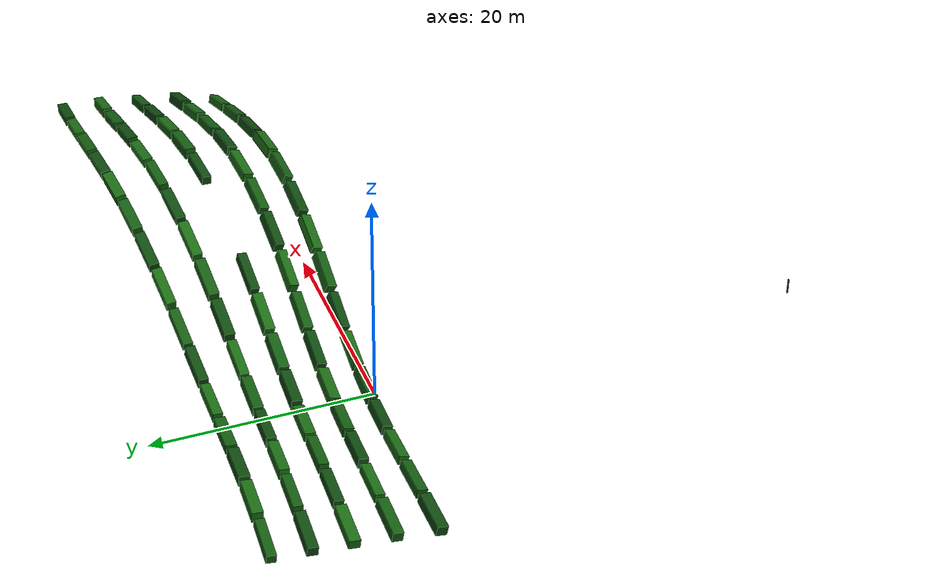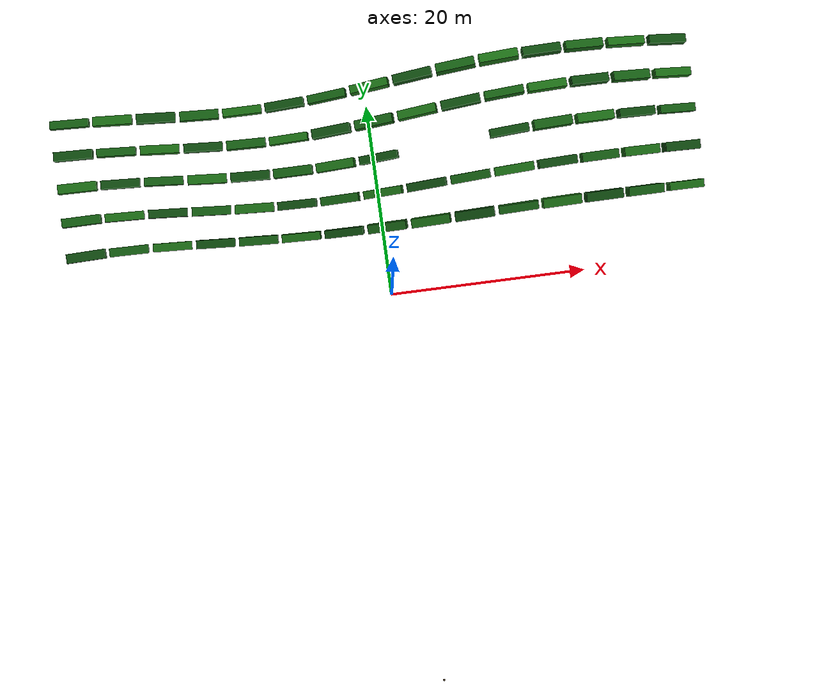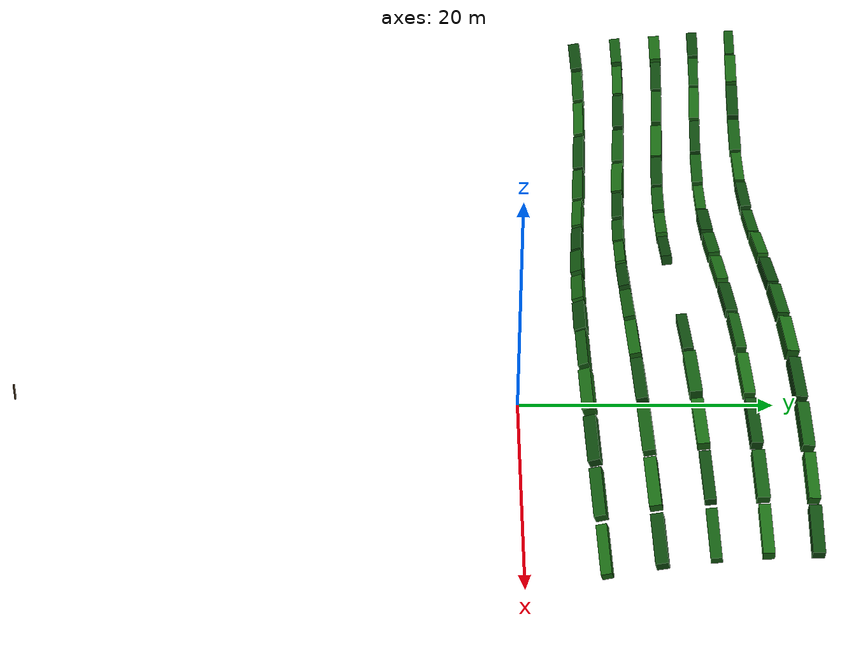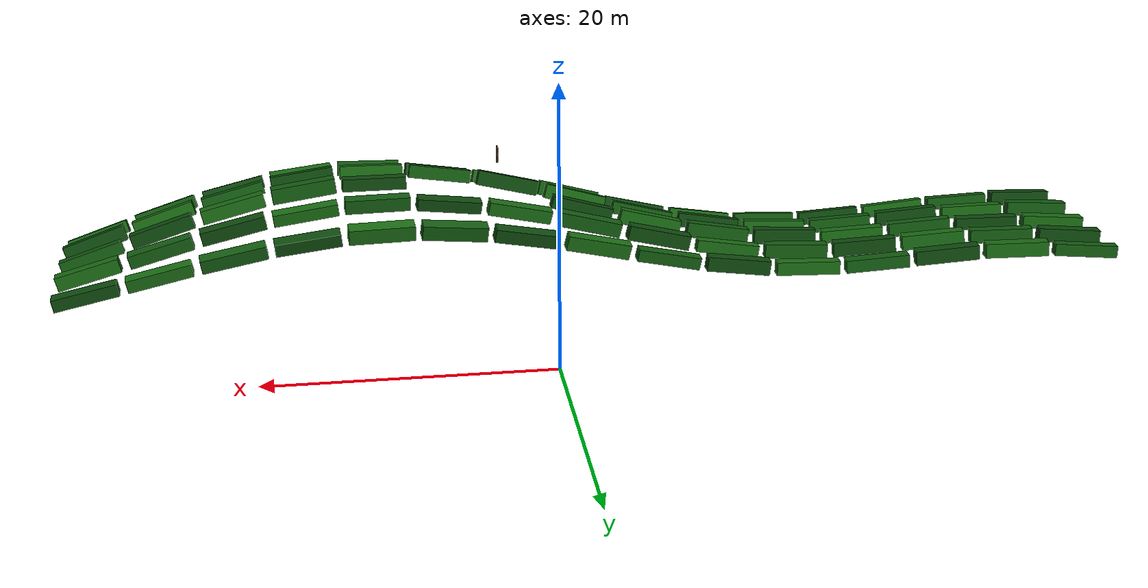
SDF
<sdf version="1.6">
 <world name="mountain_tea_garden_80m">
  <model name="tea_row_09">
   <static>true</static>
   <link name="bush_00">
    <pose>-29 5.35225 12.7639 0.180053 -0.0415722 0.0138171</pose>
    <collision name="collision">
     <geometry><box><size>3.75 0.899342 0.82815</size></box></geometry>
     <laser_retro>55</laser_retro>
     <surface><friction><ode><mu>1.15</mu><mu2>1.15</mu2></ode></friction></surface>
    </collision>
    <visual name="visual">
     <geometry><box><size>3.75 0.899342 0.82815</size></box></geometry>
     <material>
      <ambient>0.055 0.29 0.055 1</ambient>
      <diffuse>0.055 0.29 0.055 1</diffuse>
      <specular>0.05 0.05 0.05 1</specular>
     </material>
    </visual>
   </link>
   <link name="bush_01">
    <pose>-24.85 5.36312 12.7288 0.20988 0.037722 -0.00863311</pose>
    <collision name="collision">
     <geometry><box><size>3.75 0.828005 0.735331</size></box></geometry>
     <laser_retro>55</laser_retro>
     <surface><friction><ode><mu>1.15</mu><mu2>1.15</mu2></ode></friction></surface>
    </collision>
    <visual name="visual">
     <geometry><box><size>3.75 0.828005 0.735331</size></box></geometry>
     <material>
      <ambient>0.075 0.36 0.065 1</ambient>
      <diffuse>0.075 0.36 0.065 1</diffuse>
      <specular>0.05 0.05 0.05 1</specular>
     </material>
    </visual>
   </link>
   <link name="bush_02">
    <pose>-20.7 5.28213 12.4472 0.228962 0.0930998 -0.0299635</pose>
    <collision name="collision">
     <geometry><box><size>3.75 0.782693 0.755233</size></box></geometry>
     <laser_retro>55</laser_retro>
     <surface><friction><ode><mu>1.15</mu><mu2>1.15</mu2></ode></friction></surface>
    </collision>
    <visual name="visual">
     <geometry><box><size>3.75 0.782693 0.755233</size></box></geometry>
     <material>
      <ambient>0.1 0.42 0.075 1</ambient>
      <diffuse>0.1 0.42 0.075 1</diffuse>
      <specular>0.05 0.05 0.05 1</specular>
     </material>
    </visual>
   </link>
   <link name="bush_03">
    <pose>-16.55 5.11972 12.0822 0.244259 0.0742538 -0.047415</pose>
    <collision name="collision">
     <geometry><box><size>3.75 0.814932 0.780849</size></box></geometry>
     <laser_retro>55</laser_retro>
     <surface><friction><ode><mu>1.15</mu><mu2>1.15</mu2></ode></friction></surface>
    </collision>
    <visual name="visual">
     <geometry><box><size>3.75 0.814932 0.780849</size></box></geometry>
     <material>
      <ambient>0.055 0.29 0.055 1</ambient>
      <diffuse>0.055 0.29 0.055 1</diffuse>
      <specular>0.05 0.05 0.05 1</specular>
     </material>
    </visual>
   </link>
   <link name="bush_04">
    <pose>-12.4 4.89679 11.9659 0.265503 -0.0174223 -0.0587484</pose>
    <collision name="collision">
     <geometry><box><size>3.75 0.812604 0.822416</size></box></geometry>
     <laser_retro>55</laser_retro>
     <surface><friction><ode><mu>1.15</mu><mu2>1.15</mu2></ode></friction></surface>
    </collision>
    <visual name="visual">
     <geometry><box><size>3.75 0.812604 0.822416</size></box></geometry>
     <material>
      <ambient>0.075 0.36 0.065 1</ambient>
      <diffuse>0.075 0.36 0.065 1</diffuse>
      <specular>0.05 0.05 0.05 1</specular>
     </material>
    </visual>
   </link>
   <link name="bush_05">
    <pose>-8.25 4.64207 12.2722 0.294253 -0.134065 -0.0625233</pose>
    <collision name="collision">
     <geometry><box><size>3.75 0.760839 0.799647</size></box></geometry>
     <laser_retro>55</laser_retro>
     <surface><friction><ode><mu>1.15</mu><mu2>1.15</mu2></ode></friction></surface>
    </collision>
    <visual name="visual">
     <geometry><box><size>3.75 0.760839 0.799647</size></box></geometry>
     <material>
      <ambient>0.1 0.42 0.075 1</ambient>
      <diffuse>0.1 0.42 0.075 1</diffuse>
      <specular>0.05 0.05 0.05 1</specular>
     </material>
    </visual>
   </link>
   <link name="bush_06">
    <pose>-4.1 4.38837 13.0352 0.324111 -0.222505 -0.058263</pose>
    <collision name="collision">
     <geometry><box><size>3.75 0.76388 0.79251</size></box></geometry>
     <laser_retro>55</laser_retro>
     <surface><friction><ode><mu>1.15</mu><mu2>1.15</mu2></ode></friction></surface>
    </collision>
    <visual name="visual">
     <geometry><box><size>3.75 0.76388 0.79251</size></box></geometry>
     <material>
      <ambient>0.055 0.29 0.055 1</ambient>
      <diffuse>0.055 0.29 0.055 1</diffuse>
      <specular>0.05 0.05 0.05 1</specular>
     </material>
    </visual>
   </link>
   <link name="bush_07">
    <pose>0.05 4.16838 14.1157 0.347809 -0.25602 -0.0465056</pose>
    <collision name="collision">
     <geometry><box><size>3.75 0.83859 0.881807</size></box></geometry>
     <laser_retro>55</laser_retro>
     <surface><friction><ode><mu>1.15</mu><mu2>1.15</mu2></ode></friction></surface>
    </collision>
    <visual name="visual">
     <geometry><box><size>3.75 0.83859 0.881807</size></box></geometry>
     <material>
      <ambient>0.075 0.36 0.065 1</ambient>
      <diffuse>0.075 0.36 0.065 1</diffuse>
      <specular>0.05 0.05 0.05 1</specular>
     </material>
    </visual>
   </link>
   <link name="bush_08">
    <pose>4.2 4.01043 15.0959 0.361532 -0.229834 -0.0287463</pose>
    <collision name="collision">
     <geometry><box><size>3.75 0.86535 0.740402</size></box></geometry>
     <laser_retro>55</laser_retro>
     <surface><friction><ode><mu>1.15</mu><mu2>1.15</mu2></ode></friction></surface>
    </collision>
    <visual name="visual">
     <geometry><box><size>3.75 0.86535 0.740402</size></box></geometry>
     <material>
      <ambient>0.1 0.42 0.075 1</ambient>
      <diffuse>0.1 0.42 0.075 1</diffuse>
      <specular>0.05 0.05 0.05 1</specular>
     </material>
    </visual>
   </link>
   <link name="bush_09">
    <pose>8.35 3.93486 15.9007 0.364867 -0.148978 -0.00726499</pose>
    <collision name="collision">
     <geometry><box><size>3.75 0.898973 0.722037</size></box></geometry>
     <laser_retro>55</laser_retro>
     <surface><friction><ode><mu>1.15</mu><mu2>1.15</mu2></ode></friction></surface>
    </collision>
    <visual name="visual">
     <geometry><box><size>3.75 0.898973 0.722037</size></box></geometry>
     <material>
      <ambient>0.055 0.29 0.055 1</ambient>
      <diffuse>0.055 0.29 0.055 1</diffuse>
      <specular>0.05 0.05 0.05 1</specular>
     </material>
    </visual>
   </link>
   <link name="bush_10">
    <pose>12.5 3.95143 16.3571 0.359266 -0.0280177 0.0151587</pose>
    <collision name="collision">
     <geometry><box><size>3.75 0.769859 0.877444</size></box></geometry>
     <laser_retro>55</laser_retro>
     <surface><friction><ode><mu>1.15</mu><mu2>1.15</mu2></ode></friction></surface>
    </collision>
    <visual name="visual">
     <geometry><box><size>3.75 0.769859 0.877444</size></box></geometry>
     <material>
      <ambient>0.075 0.36 0.065 1</ambient>
      <diffuse>0.075 0.36 0.065 1</diffuse>
      <specular>0.05 0.05 0.05 1</specular>
     </material>
    </visual>
   </link>
   <link name="bush_11">
    <pose>16.65 4.05798 16.1934 0.34668 0.105656 0.0356169</pose>
    <collision name="collision">
     <geometry><box><size>3.75 0.874112 0.875767</size></box></geometry>
     <laser_retro>55</laser_retro>
     <surface><friction><ode><mu>1.15</mu><mu2>1.15</mu2></ode></friction></surface>
    </collision>
    <visual name="visual">
     <geometry><box><size>3.75 0.874112 0.875767</size></box></geometry>
     <material>
      <ambient>0.1 0.42 0.075 1</ambient>
      <diffuse>0.1 0.42 0.075 1</diffuse>
      <specular>0.05 0.05 0.05 1</specular>
     </material>
    </visual>
   </link>
   <link name="bush_12">
    <pose>20.8 4.24079 15.4515 0.32883 0.219406 0.0514685</pose>
    <collision name="collision">
     <geometry><box><size>3.75 0.877348 0.780358</size></box></geometry>
     <laser_retro>55</laser_retro>
     <surface><friction><ode><mu>1.15</mu><mu2>1.15</mu2></ode></friction></surface>
    </collision>
    <visual name="visual">
     <geometry><box><size>3.75 0.877348 0.780358</size></box></geometry>
     <material>
      <ambient>0.055 0.29 0.055 1</ambient>
      <diffuse>0.055 0.29 0.055 1</diffuse>
      <specular>0.05 0.05 0.05 1</specular>
     </material>
    </visual>
   </link>
   <link name="bush_13">
    <pose>24.95 4.47632 14.3535 0.307339 0.290302 0.0606853</pose>
    <collision name="collision">
     <geometry><box><size>3.75 0.859435 0.787765</size></box></geometry>
     <laser_retro>55</laser_retro>
     <surface><friction><ode><mu>1.15</mu><mu2>1.15</mu2></ode></friction></surface>
    </collision>
    <visual name="visual">
     <geometry><box><size>3.75 0.859435 0.787765</size></box></geometry>
     <material>
      <ambient>0.075 0.36 0.065 1</ambient>
      <diffuse>0.075 0.36 0.065 1</diffuse>
      <specular>0.05 0.05 0.05 1</specular>
     </material>
    </visual>
   </link>
   <link name="bush_14">
    <pose>29.1 4.73423 13.0215 0.284367 0.310866 0.0620989</pose>
    <collision name="collision">
     <geometry><box><size>3.75 0.760999 0.739546</size></box></geometry>
     <laser_retro>55</laser_retro>
     <surface><friction><ode><mu>1.15</mu><mu2>1.15</mu2></ode></friction></surface>
    </collision>
    <visual name="visual">
     <geometry><box><size>3.75 0.760999 0.739546</size></box></geometry>
     <material>
      <ambient>0.1 0.42 0.075 1</ambient>
      <diffuse>0.1 0.42 0.075 1</diffuse>
      <specular>0.05 0.05 0.05 1</specular>
     </material>
    </visual>
   </link>
  </model>
  <model name="tea_row_10">
   <static>true</static>
   <link name="bush_00">
    <pose>-29 8.70456 13.2982 0.134036 -0.0614936 -0.0128954</pose>
    <collision name="collision">
     <geometry><box><size>3.75 0.85013 0.842702</size></box></geometry>
     <laser_retro>55</laser_retro>
     <surface><friction><ode><mu>1.15</mu><mu2>1.15</mu2></ode></friction></surface>
    </collision>
    <visual name="visual">
     <geometry><box><size>3.75 0.85013 0.842702</size></box></geometry>
     <material>
      <ambient>0.075 0.36 0.065 1</ambient>
      <diffuse>0.075 0.36 0.065 1</diffuse>
      <specular>0.05 0.05 0.05 1</specular>
     </material>
    </visual>
   </link>
   <link name="bush_01">
    <pose>-24.85 8.60682 13.3215 0.155666 0.0234297 -0.0336851</pose>
    <collision name="collision">
     <geometry><box><size>3.75 0.779008 0.722194</size></box></geometry>
     <laser_retro>55</laser_retro>
     <surface><friction><ode><mu>1.15</mu><mu2>1.15</mu2></ode></friction></surface>
    </collision>
    <visual name="visual">
     <geometry><box><size>3.75 0.779008 0.722194</size></box></geometry>
     <material>
      <ambient>0.1 0.42 0.075 1</ambient>
      <diffuse>0.1 0.42 0.075 1</diffuse>
      <specular>0.05 0.05 0.05 1</specular>
     </material>
    </visual>
   </link>
   <link name="bush_02">
    <pose>-20.7 8.4309 13.1346 0.169636 0.0845534 -0.0501166</pose>
    <collision name="collision">
     <geometry><box><size>3.75 0.798825 0.83885</size></box></geometry>
     <laser_retro>55</laser_retro>
     <surface><friction><ode><mu>1.15</mu><mu2>1.15</mu2></ode></friction></surface>
    </collision>
    <visual name="visual">
     <geometry><box><size>3.75 0.798825 0.83885</size></box></geometry>
     <material>
      <ambient>0.055 0.29 0.055 1</ambient>
      <diffuse>0.055 0.29 0.055 1</diffuse>
      <specular>0.05 0.05 0.05 1</specular>
     </material>
    </visual>
   </link>
   <link name="bush_03">
    <pose>-16.55 8.19948 12.7614 0.182092 0.0666799 -0.0600855</pose>
    <collision name="collision">
     <geometry><box><size>3.75 0.833669 0.785185</size></box></geometry>
     <laser_retro>55</laser_retro>
     <surface><friction><ode><mu>1.15</mu><mu2>1.15</mu2></ode></friction></surface>
    </collision>
    <visual name="visual">
     <geometry><box><size>3.75 0.833669 0.785185</size></box></geometry>
     <material>
      <ambient>0.075 0.36 0.065 1</ambient>
      <diffuse>0.075 0.36 0.065 1</diffuse>
      <specular>0.05 0.05 0.05 1</specular>
     </material>
    </visual>
   </link>
   <link name="bush_04">
    <pose>-12.4 7.94236 12.6657 0.199169 -0.0289981 -0.0623269</pose>
    <collision name="collision">
     <geometry><box><size>3.75 0.866529 0.790984</size></box></geometry>
     <laser_retro>55</laser_retro>
     <surface><friction><ode><mu>1.15</mu><mu2>1.15</mu2></ode></friction></surface>
    </collision>
    <visual name="visual">
     <geometry><box><size>3.75 0.866529 0.790984</size></box></geometry>
     <material>
      <ambient>0.1 0.42 0.075 1</ambient>
      <diffuse>0.1 0.42 0.075 1</diffuse>
      <specular>0.05 0.05 0.05 1</specular>
     </material>
    </visual>
   </link>
   <link name="bush_05">
    <pose>-8.25 7.69266 13.0673 0.219361 -0.151053 -0.0565578</pose>
    <collision name="collision">
     <geometry><box><size>3.75 0.803164 0.838492</size></box></geometry>
     <laser_retro>55</laser_retro>
     <surface><friction><ode><mu>1.15</mu><mu2>1.15</mu2></ode></friction></surface>
    </collision>
    <visual name="visual">
     <geometry><box><size>3.75 0.803164 0.838492</size></box></geometry>
     <material>
      <ambient>0.055 0.29 0.055 1</ambient>
      <diffuse>0.055 0.29 0.055 1</diffuse>
      <specular>0.05 0.05 0.05 1</specular>
     </material>
    </visual>
   </link>
   <link name="bush_06">
    <pose>-4.1 7.48256 13.8674 0.236342 -0.242617 -0.0435077</pose>
    <collision name="collision">
     <geometry><box><size>3.75 0.830412 0.743927</size></box></geometry>
     <laser_retro>55</laser_retro>
     <surface><friction><ode><mu>1.15</mu><mu2>1.15</mu2></ode></friction></surface>
    </collision>
    <visual name="visual">
     <geometry><box><size>3.75 0.830412 0.743927</size></box></geometry>
     <material>
      <ambient>0.075 0.36 0.065 1</ambient>
      <diffuse>0.075 0.36 0.065 1</diffuse>
      <specular>0.05 0.05 0.05 1</specular>
     </material>
    </visual>
   </link>
   <link name="bush_07">
    <pose>0.05 7.33911 15.0456 0.245396 -0.275628 -0.0248388</pose>
    <collision name="collision">
     <geometry><box><size>3.75 0.764759 0.851298</size></box></geometry>
     <laser_retro>55</laser_retro>
     <surface><friction><ode><mu>1.15</mu><mu2>1.15</mu2></ode></friction></surface>
    </collision>
    <visual name="visual">
     <geometry><box><size>3.75 0.764759 0.851298</size></box></geometry>
     <material>
      <ambient>0.1 0.42 0.075 1</ambient>
      <diffuse>0.1 0.42 0.075 1</diffuse>
      <specular>0.05 0.05 0.05 1</specular>
     </material>
    </visual>
   </link>
   <link name="bush_08">
    <pose>4.2 7.2808 16.185 0.246102 -0.245144 -0.00295225</pose>
    <collision name="collision">
     <geometry><box><size>3.75 0.810115 0.871802</size></box></geometry>
     <laser_retro>55</laser_retro>
     <surface><friction><ode><mu>1.15</mu><mu2>1.15</mu2></ode></friction></surface>
    </collision>
    <visual name="visual">
     <geometry><box><size>3.75 0.810115 0.871802</size></box></geometry>
     <material>
      <ambient>0.055 0.29 0.055 1</ambient>
      <diffuse>0.055 0.29 0.055 1</diffuse>
      <specular>0.05 0.05 0.05 1</specular>
     </material>
    </visual>
   </link>
   <link name="bush_09">
    <pose>8.35 7.31514 16.9955 0.241336 -0.15639 0.0193173</pose>
    <collision name="collision">
     <geometry><box><size>3.75 0.823586 0.764395</size></box></geometry>
     <laser_retro>55</laser_retro>
     <surface><friction><ode><mu>1.15</mu><mu2>1.15</mu2></ode></friction></surface>
    </collision>
    <visual name="visual">
     <geometry><box><size>3.75 0.823586 0.764395</size></box></geometry>
     <material>
      <ambient>0.075 0.36 0.065 1</ambient>
      <diffuse>0.075 0.36 0.065 1</diffuse>
      <specular>0.05 0.05 0.05 1</specular>
     </material>
    </visual>
   </link>
   <link name="bush_10">
    <pose>12.5 7.4377 17.3918 0.234977 -0.0256073 0.039083</pose>
    <collision name="collision">
     <geometry><box><size>3.75 0.828496 0.777836</size></box></geometry>
     <laser_retro>55</laser_retro>
     <surface><friction><ode><mu>1.15</mu><mu2>1.15</mu2></ode></friction></surface>
    </collision>
    <visual name="visual">
     <geometry><box><size>3.75 0.828496 0.777836</size></box></geometry>
     <material>
      <ambient>0.1 0.42 0.075 1</ambient>
      <diffuse>0.1 0.42 0.075 1</diffuse>
      <specular>0.05 0.05 0.05 1</specular>
     </material>
    </visual>
   </link>
   <link name="bush_11">
    <pose>16.65 7.63269 17.2178 0.229837 0.116143 0.0537969</pose>
    <collision name="collision">
     <geometry><box><size>3.75 0.840752 0.812497</size></box></geometry>
     <laser_retro>55</laser_retro>
     <surface><friction><ode><mu>1.15</mu><mu2>1.15</mu2></ode></friction></surface>
    </collision>
    <visual name="visual">
     <geometry><box><size>3.75 0.840752 0.812497</size></box></geometry>
     <material>
      <ambient>0.055 0.29 0.055 1</ambient>
      <diffuse>0.055 0.29 0.055 1</diffuse>
      <specular>0.05 0.05 0.05 1</specular>
     </material>
    </visual>
   </link>
   <link name="bush_12">
    <pose>20.8 7.875 16.426 0.226868 0.233216 0.06158</pose>
    <collision name="collision">
     <geometry><box><size>3.75 0.865535 0.726184</size></box></geometry>
     <laser_retro>55</laser_retro>
     <surface><friction><ode><mu>1.15</mu><mu2>1.15</mu2></ode></friction></surface>
    </collision>
    <visual name="visual">
     <geometry><box><size>3.75 0.865535 0.726184</size></box></geometry>
     <material>
      <ambient>0.075 0.36 0.065 1</ambient>
      <diffuse>0.075 0.36 0.065 1</diffuse>
      <specular>0.05 0.05 0.05 1</specular>
     </material>
    </visual>
   </link>
   <link name="bush_13">
    <pose>24.95 8.13342 15.3105 0.225916 0.302858 0.061447</pose>
    <collision name="collision">
     <geometry><box><size>3.75 0.86402 0.819587</size></box></geometry>
     <laser_retro>55</laser_retro>
     <surface><friction><ode><mu>1.15</mu><mu2>1.15</mu2></ode></friction></surface>
    </collision>
    <visual name="visual">
     <geometry><box><size>3.75 0.86402 0.819587</size></box></geometry>
     <material>
      <ambient>0.1 0.42 0.075 1</ambient>
      <diffuse>0.1 0.42 0.075 1</diffuse>
      <specular>0.05 0.05 0.05 1</specular>
     </material>
    </visual>
   </link>
   <link name="bush_14">
    <pose>29.1 8.37465 13.9927 0.226959 0.319792 0.0534144</pose>
    <collision name="collision">
     <geometry><box><size>3.75 0.873963 0.898614</size></box></geometry>
     <laser_retro>55</laser_retro>
     <surface><friction><ode><mu>1.15</mu><mu2>1.15</mu2></ode></friction></surface>
    </collision>
    <visual name="visual">
     <geometry><box><size>3.75 0.873963 0.898614</size></box></geometry>
     <material>
      <ambient>0.055 0.29 0.055 1</ambient>
      <diffuse>0.055 0.29 0.055 1</diffuse>
      <specular>0.05 0.05 0.05 1</specular>
     </material>
    </visual>
   </link>
  </model>
  <model name="tea_row_11">
   <static>true</static>
   <link name="bush_00">
    <pose>-29 11.9286 13.633 0.106095 -0.0735593 -0.037245</pose>
    <collision name="collision">
     <geometry><box><size>3.75 0.890386 0.756178</size></box></geometry>
     <laser_retro>55</laser_retro>
     <surface><friction><ode><mu>1.15</mu><mu2>1.15</mu2></ode></friction></surface>
    </collision>
    <visual name="visual">
     <geometry><box><size>3.75 0.890386 0.756178</size></box></geometry>
     <material>
      <ambient>0.1 0.42 0.075 1</ambient>
      <diffuse>0.1 0.42 0.075 1</diffuse>
      <specular>0.05 0.05 0.05 1</specular>
     </material>
    </visual>
   </link>
   <link name="bush_01">
    <pose>-24.85 11.74 13.7443 0.115619 0.0133356 -0.0525785</pose>
    <collision name="collision">
     <geometry><box><size>3.75 0.815225 0.716898</size></box></geometry>
     <laser_retro>55</laser_retro>
     <surface><friction><ode><mu>1.15</mu><mu2>1.15</mu2></ode></friction></surface>
    </collision>
    <visual name="visual">
     <geometry><box><size>3.75 0.815225 0.716898</size></box></geometry>
     <material>
      <ambient>0.055 0.29 0.055 1</ambient>
      <diffuse>0.055 0.29 0.055 1</diffuse>
      <specular>0.05 0.05 0.05 1</specular>
     </material>
    </visual>
   </link>
   <link name="bush_02">
    <pose>-20.7 11.5012 13.5845 0.12162 0.0778765 -0.0611361</pose>
    <collision name="collision">
     <geometry><box><size>3.75 0.786515 0.818592</size></box></geometry>
     <laser_retro>55</laser_retro>
     <surface><friction><ode><mu>1.15</mu><mu2>1.15</mu2></ode></friction></surface>
    </collision>
    <visual name="visual">
     <geometry><box><size>3.75 0.786515 0.818592</size></box></geometry>
     <material>
      <ambient>0.075 0.36 0.065 1</ambient>
      <diffuse>0.075 0.36 0.065 1</diffuse>
      <specular>0.05 0.05 0.05 1</specular>
     </material>
    </visual>
   </link>
   <link name="bush_03">
    <pose>-16.55 11.2429 13.2246 0.128172 0.0613406 -0.0618335</pose>
    <collision name="collision">
     <geometry><box><size>3.75 0.875386 0.743825</size></box></geometry>
     <laser_retro>55</laser_retro>
     <surface><friction><ode><mu>1.15</mu><mu2>1.15</mu2></ode></friction></surface>
    </collision>
    <visual name="visual">
     <geometry><box><size>3.75 0.875386 0.743825</size></box></geometry>
     <material>
      <ambient>0.1 0.42 0.075 1</ambient>
      <diffuse>0.1 0.42 0.075 1</diffuse>
      <specular>0.05 0.05 0.05 1</specular>
     </material>
    </visual>
   </link>
   <link name="bush_04">
    <pose>-12.4 10.9984 13.2273 0.136367 -0.0357339 -0.0545826</pose>
    <collision name="collision">
     <geometry><box><size>3.75 0.858988 0.897455</size></box></geometry>
     <laser_retro>55</laser_retro>
     <surface><friction><ode><mu>1.15</mu><mu2>1.15</mu2></ode></friction></surface>
    </collision>
    <visual name="visual">
     <geometry><box><size>3.75 0.858988 0.897455</size></box></geometry>
     <material>
      <ambient>0.055 0.29 0.055 1</ambient>
      <diffuse>0.055 0.29 0.055 1</diffuse>
      <specular>0.05 0.05 0.05 1</specular>
     </material>
    </visual>
   </link>
   <link name="bush_05">
    <pose>-8.25 10.7992 13.6307 0.141424 -0.159592 -0.0403013</pose>
    <collision name="collision">
     <geometry><box><size>3.75 0.881094 0.884052</size></box></geometry>
     <laser_retro>55</laser_retro>
     <surface><friction><ode><mu>1.15</mu><mu2>1.15</mu2></ode></friction></surface>
    </collision>
    <visual name="visual">
     <geometry><box><size>3.75 0.881094 0.884052</size></box></geometry>
     <material>
      <ambient>0.075 0.36 0.065 1</ambient>
      <diffuse>0.075 0.36 0.065 1</diffuse>
      <specular>0.05 0.05 0.05 1</specular>
     </material>
    </visual>
   </link>
   <link name="bush_06">
    <pose>-4.1 10.671 14.5035 0.137952 -0.250736 -0.0208119</pose>
    <collision name="collision">
     <geometry><box><size>3.75 0.854156 0.861827</size></box></geometry>
     <laser_retro>55</laser_retro>
     <surface><friction><ode><mu>1.15</mu><mu2>1.15</mu2></ode></friction></surface>
    </collision>
    <visual name="visual">
     <geometry><box><size>3.75 0.854156 0.861827</size></box></geometry>
     <material>
      <ambient>0.1 0.42 0.075 1</ambient>
      <diffuse>0.1 0.42 0.075 1</diffuse>
      <specular>0.05 0.05 0.05 1</specular>
     </material>
    </visual>
   </link>
   <link name="bush_07">
    <pose>0.05 10.6302 15.5949 0.125002 -0.280494 0.0013747</pose>
    <collision name="collision">
     <geometry><box><size>3.75 0.764919 0.737097</size></box></geometry>
     <laser_retro>55</laser_retro>
     <surface><friction><ode><mu>1.15</mu><mu2>1.15</mu2></ode></friction></surface>
    </collision>
    <visual name="visual">
     <geometry><box><size>3.75 0.764919 0.737097</size></box></geometry>
     <material>
      <ambient>0.055 0.29 0.055 1</ambient>
      <diffuse>0.055 0.29 0.055 1</diffuse>
      <specular>0.05 0.05 0.05 1</specular>
     </material>
    </visual>
   </link>
   <link name="bush_10">
    <pose>12.5 11.0263 17.9491 0.0801965 -0.0181711 0.0558683</pose>
    <collision name="collision">
     <geometry><box><size>3.75 0.766316 0.73849</size></box></geometry>
     <laser_retro>55</laser_retro>
     <surface><friction><ode><mu>1.15</mu><mu2>1.15</mu2></ode></friction></surface>
    </collision>
    <visual name="visual">
     <geometry><box><size>3.75 0.766316 0.73849</size></box></geometry>
     <material>
      <ambient>0.055 0.29 0.055 1</ambient>
      <diffuse>0.055 0.29 0.055 1</diffuse>
      <specular>0.05 0.05 0.05 1</specular>
     </material>
    </visual>
   </link>
   <link name="bush_11">
    <pose>16.65 11.2743 17.8108 0.0817523 0.120856 0.0621813</pose>
    <collision name="collision">
     <geometry><box><size>3.75 0.896393 0.898653</size></box></geometry>
     <laser_retro>55</laser_retro>
     <surface><friction><ode><mu>1.15</mu><mu2>1.15</mu2></ode></friction></surface>
    </collision>
    <visual name="visual">
     <geometry><box><size>3.75 0.896393 0.898653</size></box></geometry>
     <material>
      <ambient>0.075 0.36 0.065 1</ambient>
      <diffuse>0.075 0.36 0.065 1</diffuse>
      <specular>0.05 0.05 0.05 1</specular>
     </material>
    </visual>
   </link>
   <link name="bush_12">
    <pose>20.8 11.532 17.0093 0.0942469 0.231491 0.0605021</pose>
    <collision name="collision">
     <geometry><box><size>3.75 0.85651 0.807696</size></box></geometry>
     <laser_retro>55</laser_retro>
     <surface><friction><ode><mu>1.15</mu><mu2>1.15</mu2></ode></friction></surface>
    </collision>
    <visual name="visual">
     <geometry><box><size>3.75 0.85651 0.807696</size></box></geometry>
     <material>
      <ambient>0.1 0.42 0.075 1</ambient>
      <diffuse>0.1 0.42 0.075 1</diffuse>
      <specular>0.05 0.05 0.05 1</specular>
     </material>
    </visual>
   </link>
   <link name="bush_13">
    <pose>24.95 11.7662 15.8799 0.115584 0.293994 0.0510429</pose>
    <collision name="collision">
     <geometry><box><size>3.75 0.791247 0.824329</size></box></geometry>
     <laser_retro>55</laser_retro>
     <surface><friction><ode><mu>1.15</mu><mu2>1.15</mu2></ode></friction></surface>
    </collision>
    <visual name="visual">
     <geometry><box><size>3.75 0.791247 0.824329</size></box></geometry>
     <material>
      <ambient>0.055 0.29 0.055 1</ambient>
      <diffuse>0.055 0.29 0.055 1</diffuse>
      <specular>0.05 0.05 0.05 1</specular>
     </material>
    </visual>
   </link>
   <link name="bush_14">
    <pose>29.1 11.9469 14.5308 0.143213 0.305604 0.035003</pose>
    <collision name="collision">
     <geometry><box><size>3.75 0.783841 0.731054</size></box></geometry>
     <laser_retro>55</laser_retro>
     <surface><friction><ode><mu>1.15</mu><mu2>1.15</mu2></ode></friction></surface>
    </collision>
    <visual name="visual">
     <geometry><box><size>3.75 0.783841 0.731054</size></box></geometry>
     <material>
      <ambient>0.075 0.36 0.065 1</ambient>
      <diffuse>0.075 0.36 0.065 1</diffuse>
      <specular>0.05 0.05 0.05 1</specular>
     </material>
    </visual>
   </link>
  </model>
  <model name="tea_row_12">
   <static>true</static>
   <link name="bush_00">
    <pose>-29 15.0473 13.9633 0.097558 -0.0765152 -0.0547891</pose>
    <collision name="collision">
     <geometry><box><size>3.75 0.851427 0.811897</size></box></geometry>
     <laser_retro>55</laser_retro>
     <surface><friction><ode><mu>1.15</mu><mu2>1.15</mu2></ode></friction></surface>
    </collision>
    <visual name="visual">
     <geometry><box><size>3.75 0.851427 0.811897</size></box></geometry>
     <material>
      <ambient>0.055 0.29 0.055 1</ambient>
      <diffuse>0.055 0.29 0.055 1</diffuse>
      <specular>0.05 0.05 0.05 1</specular>
     </material>
    </visual>
   </link>
   <link name="bush_01">
    <pose>-24.85 14.8022 14.102 0.0941593 0.00907806 -0.0618953</pose>
    <collision name="collision">
     <geometry><box><size>3.75 0.769224 0.794685</size></box></geometry>
     <laser_retro>55</laser_retro>
     <surface><friction><ode><mu>1.15</mu><mu2>1.15</mu2></ode></friction></surface>
    </collision>
    <visual name="visual">
     <geometry><box><size>3.75 0.769224 0.794685</size></box></geometry>
     <material>
      <ambient>0.075 0.36 0.065 1</ambient>
      <diffuse>0.075 0.36 0.065 1</diffuse>
      <specular>0.05 0.05 0.05 1</specular>
     </material>
    </visual>
   </link>
   <link name="bush_02">
    <pose>-20.7 14.544 13.9435 0.0916285 0.0750068 -0.0610454</pose>
    <collision name="collision">
     <geometry><box><size>3.75 0.811904 0.868225</size></box></geometry>
     <laser_retro>55</laser_retro>
     <surface><friction><ode><mu>1.15</mu><mu2>1.15</mu2></ode></friction></surface>
    </collision>
    <visual name="visual">
     <geometry><box><size>3.75 0.811904 0.868225</size></box></geometry>
     <material>
      <ambient>0.1 0.42 0.075 1</ambient>
      <diffuse>0.1 0.42 0.075 1</diffuse>
      <specular>0.05 0.05 0.05 1</specular>
     </material>
    </visual>
   </link>
   <link name="bush_03">
    <pose>-16.55 14.3059 13.628 0.0910608 0.0606146 -0.0523468</pose>
    <collision name="collision">
     <geometry><box><size>3.75 0.793523 0.866862</size></box></geometry>
     <laser_retro>55</laser_retro>
     <surface><friction><ode><mu>1.15</mu><mu2>1.15</mu2></ode></friction></surface>
    </collision>
    <visual name="visual">
     <geometry><box><size>3.75 0.793523 0.866862</size></box></geometry>
     <material>
      <ambient>0.055 0.29 0.055 1</ambient>
      <diffuse>0.055 0.29 0.055 1</diffuse>
      <specular>0.05 0.05 0.05 1</specular>
     </material>
    </visual>
   </link>
   <link name="bush_04">
    <pose>-12.4 14.1185 13.5362 0.0881894 -0.0343098 -0.0369017</pose>
    <collision name="collision">
     <geometry><box><size>3.75 0.834559 0.834244</size></box></geometry>
     <laser_retro>55</laser_retro>
     <surface><friction><ode><mu>1.15</mu><mu2>1.15</mu2></ode></friction></surface>
    </collision>
    <visual name="visual">
     <geometry><box><size>3.75 0.834559 0.834244</size></box></geometry>
     <material>
      <ambient>0.075 0.36 0.065 1</ambient>
      <diffuse>0.075 0.36 0.065 1</diffuse>
      <specular>0.05 0.05 0.05 1</specular>
     </material>
    </visual>
   </link>
   <link name="bush_05">
    <pose>-8.25 14.006 13.8746 0.0757532 -0.155138 -0.0166849</pose>
    <collision name="collision">
     <geometry><box><size>3.75 0.765108 0.71522</size></box></geometry>
     <laser_retro>55</laser_retro>
     <surface><friction><ode><mu>1.15</mu><mu2>1.15</mu2></ode></friction></surface>
    </collision>
    <visual name="visual">
     <geometry><box><size>3.75 0.765108 0.71522</size></box></geometry>
     <material>
      <ambient>0.1 0.42 0.075 1</ambient>
      <diffuse>0.1 0.42 0.075 1</diffuse>
      <specular>0.05 0.05 0.05 1</specular>
     </material>
    </visual>
   </link>
   <link name="bush_06">
    <pose>-4.1 13.983 14.8035 0.0503752 -0.241588 0.00569504</pose>
    <collision name="collision">
     <geometry><box><size>3.75 0.886166 0.863871</size></box></geometry>
     <laser_retro>55</laser_retro>
     <surface><friction><ode><mu>1.15</mu><mu2>1.15</mu2></ode></friction></surface>
    </collision>
    <visual name="visual">
     <geometry><box><size>3.75 0.886166 0.863871</size></box></geometry>
     <material>
      <ambient>0.055 0.29 0.055 1</ambient>
      <diffuse>0.055 0.29 0.055 1</diffuse>
      <specular>0.05 0.05 0.05 1</specular>
     </material>
    </visual>
   </link>
   <link name="bush_07">
    <pose>0.05 14.0523 15.8926 0.0154598 -0.265722 0.0273362</pose>
    <collision name="collision">
     <geometry><box><size>3.75 0.884545 0.840853</size></box></geometry>
     <laser_retro>55</laser_retro>
     <surface><friction><ode><mu>1.15</mu><mu2>1.15</mu2></ode></friction></surface>
    </collision>
    <visual name="visual">
     <geometry><box><size>3.75 0.884545 0.840853</size></box></geometry>
     <material>
      <ambient>0.075 0.36 0.065 1</ambient>
      <diffuse>0.075 0.36 0.065 1</diffuse>
      <specular>0.05 0.05 0.05 1</specular>
     </material>
    </visual>
   </link>
   <link name="bush_08">
    <pose>4.2 14.205 16.9236 -0.0207543 -0.225867 0.0454373</pose>
    <collision name="collision">
     <geometry><box><size>3.75 0.840349 0.774441</size></box></geometry>
     <laser_retro>55</laser_retro>
     <surface><friction><ode><mu>1.15</mu><mu2>1.15</mu2></ode></friction></surface>
    </collision>
    <visual name="visual">
     <geometry><box><size>3.75 0.840349 0.774441</size></box></geometry>
     <material>
      <ambient>0.1 0.42 0.075 1</ambient>
      <diffuse>0.1 0.42 0.075 1</diffuse>
      <specular>0.05 0.05 0.05 1</specular>
     </material>
    </visual>
   </link>
   <link name="bush_09">
    <pose>8.35 14.4215 17.6566 -0.0488613 -0.132674 0.0576729</pose>
    <collision name="collision">
     <geometry><box><size>3.75 0.846394 0.701038</size></box></geometry>
     <laser_retro>55</laser_retro>
     <surface><friction><ode><mu>1.15</mu><mu2>1.15</mu2></ode></friction></surface>
    </collision>
    <visual name="visual">
     <geometry><box><size>3.75 0.846394 0.701038</size></box></geometry>
     <material>
      <ambient>0.055 0.29 0.055 1</ambient>
      <diffuse>0.055 0.29 0.055 1</diffuse>
      <specular>0.05 0.05 0.05 1</specular>
     </material>
    </visual>
   </link>
   <link name="bush_10">
    <pose>12.5 14.6739 18.0098 -0.0616515 -0.00784892 0.0624862</pose>
    <collision name="collision">
     <geometry><box><size>3.75 0.761371 0.809567</size></box></geometry>
     <laser_retro>55</laser_retro>
     <surface><friction><ode><mu>1.15</mu><mu2>1.15</mu2></ode></friction></surface>
    </collision>
    <visual name="visual">
     <geometry><box><size>3.75 0.761371 0.809567</size></box></geometry>
     <material>
      <ambient>0.075 0.36 0.065 1</ambient>
      <diffuse>0.075 0.36 0.065 1</diffuse>
      <specular>0.05 0.05 0.05 1</specular>
     </material>
    </visual>
   </link>
   <link name="bush_11">
    <pose>16.65 14.9297 17.7263 -0.0559264 0.117098 0.0592689</pose>
    <collision name="collision">
     <geometry><box><size>3.75 0.820362 0.709309</size></box></geometry>
     <laser_retro>55</laser_retro>
     <surface><friction><ode><mu>1.15</mu><mu2>1.15</mu2></ode></friction></surface>
    </collision>
    <visual name="visual">
     <geometry><box><size>3.75 0.820362 0.709309</size></box></geometry>
     <material>
      <ambient>0.1 0.42 0.075 1</ambient>
      <diffuse>0.1 0.42 0.075 1</diffuse>
      <specular>0.05 0.05 0.05 1</specular>
     </material>
    </visual>
   </link>
   <link name="bush_12">
    <pose>20.8 15.1558 17.0695 -0.032292 0.212879 0.0484273</pose>
    <collision name="collision">
     <geometry><box><size>3.75 0.823577 0.809137</size></box></geometry>
     <laser_retro>55</laser_retro>
     <surface><friction><ode><mu>1.15</mu><mu2>1.15</mu2></ode></friction></surface>
    </collision>
    <visual name="visual">
     <geometry><box><size>3.75 0.823577 0.809137</size></box></geometry>
     <material>
      <ambient>0.055 0.29 0.055 1</ambient>
      <diffuse>0.055 0.29 0.055 1</diffuse>
      <specular>0.05 0.05 0.05 1</specular>
     </material>
    </visual>
   </link>
   <link name="bush_13">
    <pose>24.95 15.3232 16.0229 0.00622899 0.264241 0.0313384</pose>
    <collision name="collision">
     <geometry><box><size>3.75 0.889245 0.771146</size></box></geometry>
     <laser_retro>55</laser_retro>
     <surface><friction><ode><mu>1.15</mu><mu2>1.15</mu2></ode></friction></surface>
    </collision>
    <visual name="visual">
     <geometry><box><size>3.75 0.889245 0.771146</size></box></geometry>
     <material>
      <ambient>0.075 0.36 0.065 1</ambient>
      <diffuse>0.075 0.36 0.065 1</diffuse>
      <specular>0.05 0.05 0.05 1</specular>
     </material>
    </visual>
   </link>
   <link name="bush_14">
    <pose>29.1 15.4104 14.9018 0.0554363 0.27018 0.0101935</pose>
    <collision name="collision">
     <geometry><box><size>3.75 0.792886 0.833507</size></box></geometry>
     <laser_retro>55</laser_retro>
     <surface><friction><ode><mu>1.15</mu><mu2>1.15</mu2></ode></friction></surface>
    </collision>
    <visual name="visual">
     <geometry><box><size>3.75 0.792886 0.833507</size></box></geometry>
     <material>
      <ambient>0.1 0.42 0.075 1</ambient>
      <diffuse>0.1 0.42 0.075 1</diffuse>
      <specular>0.05 0.05 0.05 1</specular>
     </material>
    </visual>
   </link>
  </model>
  <model name="tea_row_13">
   <static>true</static>
   <link name="bush_00">
    <pose>-29 18.1028 14.2054 0.105108 -0.0712368 -0.0623595</pose>
    <collision name="collision">
     <geometry><box><size>3.75 0.770362 0.709856</size></box></geometry>
     <laser_retro>55</laser_retro>
     <surface><friction><ode><mu>1.15</mu><mu2>1.15</mu2></ode></friction></surface>
    </collision>
    <visual name="visual">
     <geometry><box><size>3.75 0.770362 0.709856</size></box></geometry>
     <material>
      <ambient>0.075 0.36 0.065 1</ambient>
      <diffuse>0.075 0.36 0.065 1</diffuse>
      <specular>0.05 0.05 0.05 1</specular>
     </material>
    </visual>
   </link>
   <link name="bush_01">
    <pose>-24.85 17.8458 14.4098 0.0915821 0.0105706 -0.0599663</pose>
    <collision name="collision">
     <geometry><box><size>3.75 0.870338 0.850172</size></box></geometry>
     <laser_retro>55</laser_retro>
     <surface><friction><ode><mu>1.15</mu><mu2>1.15</mu2></ode></friction></surface>
    </collision>
    <visual name="visual">
     <geometry><box><size>3.75 0.870338 0.850172</size></box></geometry>
     <material>
      <ambient>0.1 0.42 0.075 1</ambient>
      <diffuse>0.1 0.42 0.075 1</diffuse>
      <specular>0.05 0.05 0.05 1</specular>
     </material>
    </visual>
   </link>
   <link name="bush_02">
    <pose>-20.7 17.6152 14.207 0.083101 0.0761799 -0.0498607</pose>
    <collision name="collision">
     <geometry><box><size>3.75 0.894606 0.843511</size></box></geometry>
     <laser_retro>55</laser_retro>
     <surface><friction><ode><mu>1.15</mu><mu2>1.15</mu2></ode></friction></surface>
    </collision>
    <visual name="visual">
     <geometry><box><size>3.75 0.894606 0.843511</size></box></geometry>
     <material>
      <ambient>0.055 0.29 0.055 1</ambient>
      <diffuse>0.055 0.29 0.055 1</diffuse>
      <specular>0.05 0.05 0.05 1</specular>
     </material>
    </visual>
   </link>
   <link name="bush_03">
    <pose>-16.55 17.4406 13.834 0.0774052 0.064778 -0.0333251</pose>
    <collision name="collision">
     <geometry><box><size>3.75 0.891511 0.74687</size></box></geometry>
     <laser_retro>55</laser_retro>
     <surface><friction><ode><mu>1.15</mu><mu2>1.15</mu2></ode></friction></surface>
    </collision>
    <visual name="visual">
     <geometry><box><size>3.75 0.891511 0.74687</size></box></geometry>
     <material>
      <ambient>0.075 0.36 0.065 1</ambient>
      <diffuse>0.075 0.36 0.065 1</diffuse>
      <specular>0.05 0.05 0.05 1</specular>
     </material>
    </visual>
   </link>
   <link name="bush_04">
    <pose>-12.4 17.3444 13.7451 0.0655731 -0.0243216 -0.0124777</pose>
    <collision name="collision">
     <geometry><box><size>3.75 0.769293 0.776856</size></box></geometry>
     <laser_retro>55</laser_retro>
     <surface><friction><ode><mu>1.15</mu><mu2>1.15</mu2></ode></friction></surface>
    </collision>
    <visual name="visual">
     <geometry><box><size>3.75 0.769293 0.776856</size></box></geometry>
     <material>
      <ambient>0.1 0.42 0.075 1</ambient>
      <diffuse>0.1 0.42 0.075 1</diffuse>
      <specular>0.05 0.05 0.05 1</specular>
     </material>
    </visual>
   </link>
   <link name="bush_05">
    <pose>-8.25 17.3392 14.1253 0.0392271 -0.137243 0.00998795</pose>
    <collision name="collision">
     <geometry><box><size>3.75 0.80501 0.857596</size></box></geometry>
     <laser_retro>55</laser_retro>
     <surface><friction><ode><mu>1.15</mu><mu2>1.15</mu2></ode></friction></surface>
    </collision>
    <visual name="visual">
     <geometry><box><size>3.75 0.80501 0.857596</size></box></geometry>
     <material>
      <ambient>0.055 0.29 0.055 1</ambient>
      <diffuse>0.055 0.29 0.055 1</diffuse>
      <specular>0.05 0.05 0.05 1</specular>
     </material>
    </visual>
   </link>
   <link name="bush_06">
    <pose>-4.1 17.4256 14.8124 -0.00228812 -0.215324 0.0311581</pose>
    <collision name="collision">
     <geometry><box><size>3.75 0.797634 0.713255</size></box></geometry>
     <laser_retro>55</laser_retro>
     <surface><friction><ode><mu>1.15</mu><mu2>1.15</mu2></ode></friction></surface>
    </collision>
    <visual name="visual">
     <geometry><box><size>3.75 0.797634 0.713255</size></box></geometry>
     <material>
      <ambient>0.075 0.36 0.065 1</ambient>
      <diffuse>0.075 0.36 0.065 1</diffuse>
      <specular>0.05 0.05 0.05 1</specular>
     </material>
    </visual>
   </link>
   <link name="bush_07">
    <pose>0.05 17.5923 15.8625 -0.0519083 -0.232954 0.0482954</pose>
    <collision name="collision">
     <geometry><box><size>3.75 0.804147 0.873795</size></box></geometry>
     <laser_retro>55</laser_retro>
     <surface><friction><ode><mu>1.15</mu><mu2>1.15</mu2></ode></friction></surface>
    </collision>
    <visual name="visual">
     <geometry><box><size>3.75 0.804147 0.873795</size></box></geometry>
     <material>
      <ambient>0.1 0.42 0.075 1</ambient>
      <diffuse>0.1 0.42 0.075 1</diffuse>
      <specular>0.05 0.05 0.05 1</specular>
     </material>
    </visual>
   </link>
   <link name="bush_08">
    <pose>4.2 17.8181 16.7354 -0.0991566 -0.191754 0.0592023</pose>
    <collision name="collision">
     <geometry><box><size>3.75 0.857346 0.788355</size></box></geometry>
     <laser_retro>55</laser_retro>
     <surface><friction><ode><mu>1.15</mu><mu2>1.15</mu2></ode></friction></surface>
    </collision>
    <visual name="visual">
     <geometry><box><size>3.75 0.857346 0.788355</size></box></geometry>
     <material>
      <ambient>0.055 0.29 0.055 1</ambient>
      <diffuse>0.055 0.29 0.055 1</diffuse>
      <specular>0.05 0.05 0.05 1</specular>
     </material>
    </visual>
   </link>
   <link name="bush_09">
    <pose>8.35 18.0737 17.4103 -0.134279 -0.105947 0.0624933</pose>
    <collision name="collision">
     <geometry><box><size>3.75 0.882027 0.865658</size></box></geometry>
     <laser_retro>55</laser_retro>
     <surface><friction><ode><mu>1.15</mu><mu2>1.15</mu2></ode></friction></surface>
    </collision>
    <visual name="visual">
     <geometry><box><size>3.75 0.882027 0.865658</size></box></geometry>
     <material>
      <ambient>0.075 0.36 0.065 1</ambient>
      <diffuse>0.075 0.36 0.065 1</diffuse>
      <specular>0.05 0.05 0.05 1</specular>
     </material>
    </visual>
   </link>
   <link name="bush_10">
    <pose>12.5 18.3262 17.6448 -0.150685 0.0020337 0.0577529</pose>
    <collision name="collision">
     <geometry><box><size>3.75 0.884401 0.895527</size></box></geometry>
     <laser_retro>55</laser_retro>
     <surface><friction><ode><mu>1.15</mu><mu2>1.15</mu2></ode></friction></surface>
    </collision>
    <visual name="visual">
     <geometry><box><size>3.75 0.884401 0.895527</size></box></geometry>
     <material>
      <ambient>0.1 0.42 0.075 1</ambient>
      <diffuse>0.1 0.42 0.075 1</diffuse>
      <specular>0.05 0.05 0.05 1</specular>
     </material>
    </visual>
   </link>
   <link name="bush_11">
    <pose>16.65 18.5432 17.3514 -0.145561 0.105367 0.0455799</pose>
    <collision name="collision">
     <geometry><box><size>3.75 0.858536 0.768153</size></box></geometry>
     <laser_retro>55</laser_retro>
     <surface><friction><ode><mu>1.15</mu><mu2>1.15</mu2></ode></friction></surface>
    </collision>
    <visual name="visual">
     <geometry><box><size>3.75 0.858536 0.768153</size></box></geometry>
     <material>
      <ambient>0.055 0.29 0.055 1</ambient>
      <diffuse>0.055 0.29 0.055 1</diffuse>
      <specular>0.05 0.05 0.05 1</specular>
     </material>
    </visual>
   </link>
   <link name="bush_12">
    <pose>20.8 18.6967 16.7515 -0.119198 0.181839 0.0275233</pose>
    <collision name="collision">
     <geometry><box><size>3.75 0.860192 0.794406</size></box></geometry>
     <laser_retro>55</laser_retro>
     <surface><friction><ode><mu>1.15</mu><mu2>1.15</mu2></ode></friction></surface>
    </collision>
    <visual name="visual">
     <geometry><box><size>3.75 0.860192 0.794406</size></box></geometry>
     <material>
      <ambient>0.075 0.36 0.065 1</ambient>
      <diffuse>0.075 0.36 0.065 1</diffuse>
      <specular>0.05 0.05 0.05 1</specular>
     </material>
    </visual>
   </link>
   <link name="bush_13">
    <pose>24.95 18.7668 15.8648 -0.074091 0.220507 0.00590244</pose>
    <collision name="collision">
     <geometry><box><size>3.75 0.796763 0.74269</size></box></geometry>
     <laser_retro>55</laser_retro>
     <surface><friction><ode><mu>1.15</mu><mu2>1.15</mu2></ode></friction></surface>
    </collision>
    <visual name="visual">
     <geometry><box><size>3.75 0.796763 0.74269</size></box></geometry>
     <material>
      <ambient>0.1 0.42 0.075 1</ambient>
      <diffuse>0.1 0.42 0.075 1</diffuse>
      <specular>0.05 0.05 0.05 1</specular>
     </material>
    </visual>
   </link>
   <link name="bush_14">
    <pose>29.1 18.7446 14.9166 -0.0145682 0.221106 -0.0164841</pose>
    <collision name="collision">
     <geometry><box><size>3.75 0.852192 0.735411</size></box></geometry>
     <laser_retro>55</laser_retro>
     <surface><friction><ode><mu>1.15</mu><mu2>1.15</mu2></ode></friction></surface>
    </collision>
    <visual name="visual">
     <geometry><box><size>3.75 0.852192 0.735411</size></box></geometry>
     <material>
      <ambient>0.055 0.29 0.055 1</ambient>
      <diffuse>0.055 0.29 0.055 1</diffuse>
      <specular>0.05 0.05 0.05 1</specular>
     </material>
    </visual>
   </link>
  </model>
  <model name="perimeter_fence">
   <static>true</static>
   <link name="south_post_06">
    <pose>0 -39.3 1.41744 0 0 0</pose>
    <collision name="collision">
     <geometry><cylinder><radius>0.075</radius><length>1.45</length></cylinder></geometry>
     <laser_retro>70</laser_retro>
     <surface><friction><ode><mu>1.15</mu><mu2>1.15</mu2></ode></friction></surface>
    </collision>
    <visual name="visual">
     <geometry><cylinder><radius>0.075</radius><length>1.45</length></cylinder></geometry>
     <material>
      <ambient>0.3 0.22 0.12 1</ambient>
      <diffuse>0.3 0.22 0.12 1</diffuse>
      <specular>0.05 0.05 0.05 1</specular>
     </material>
    </visual>
   </link>
  </model>
 </world>
</sdf>
